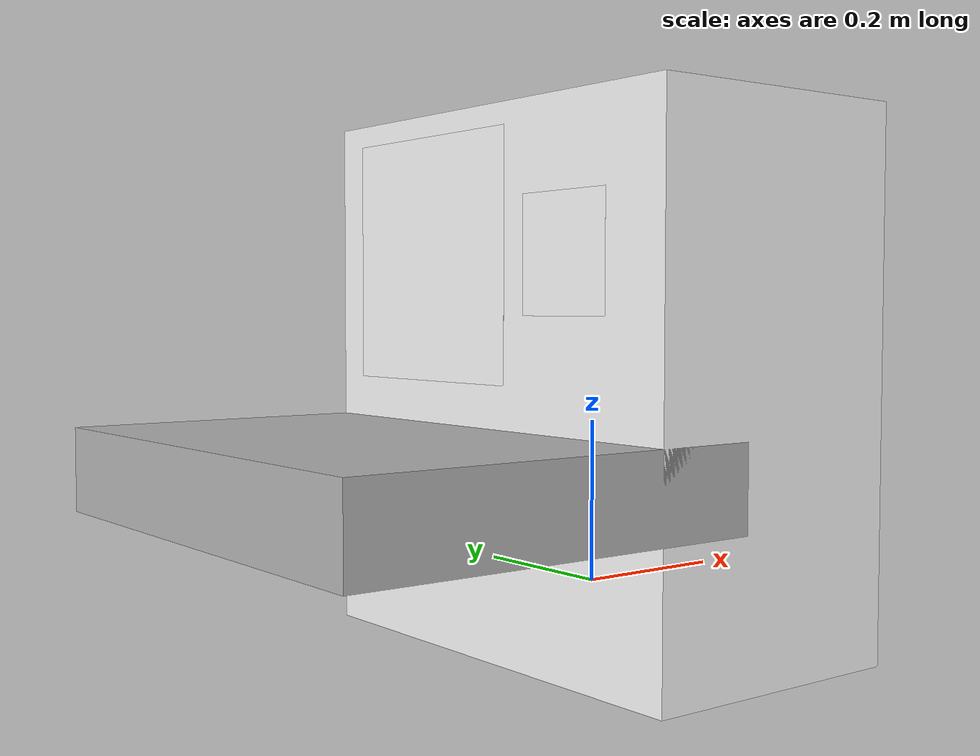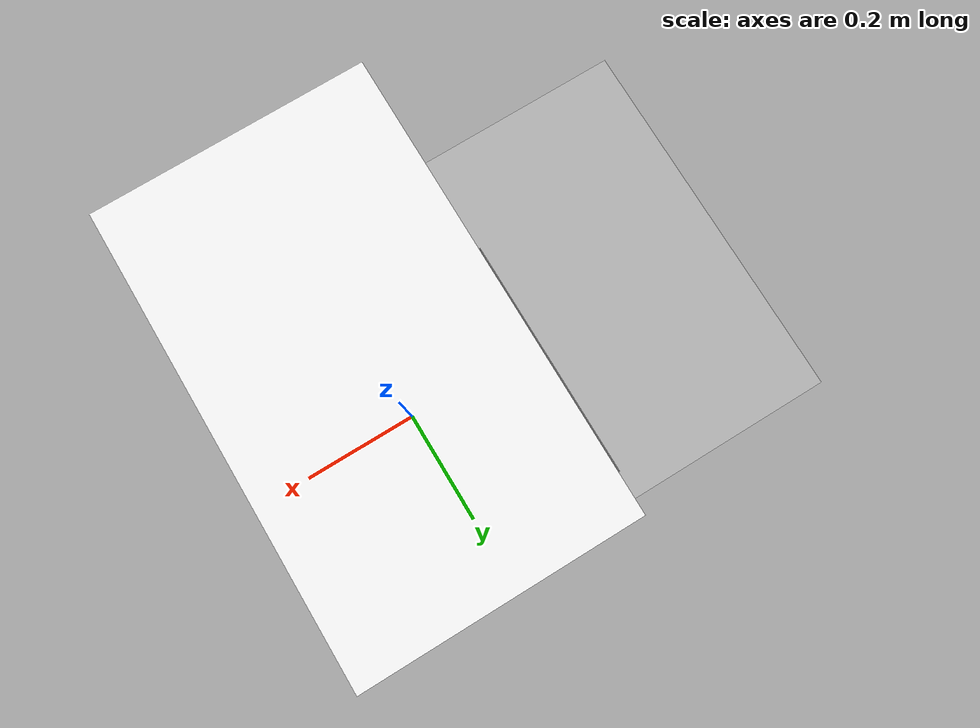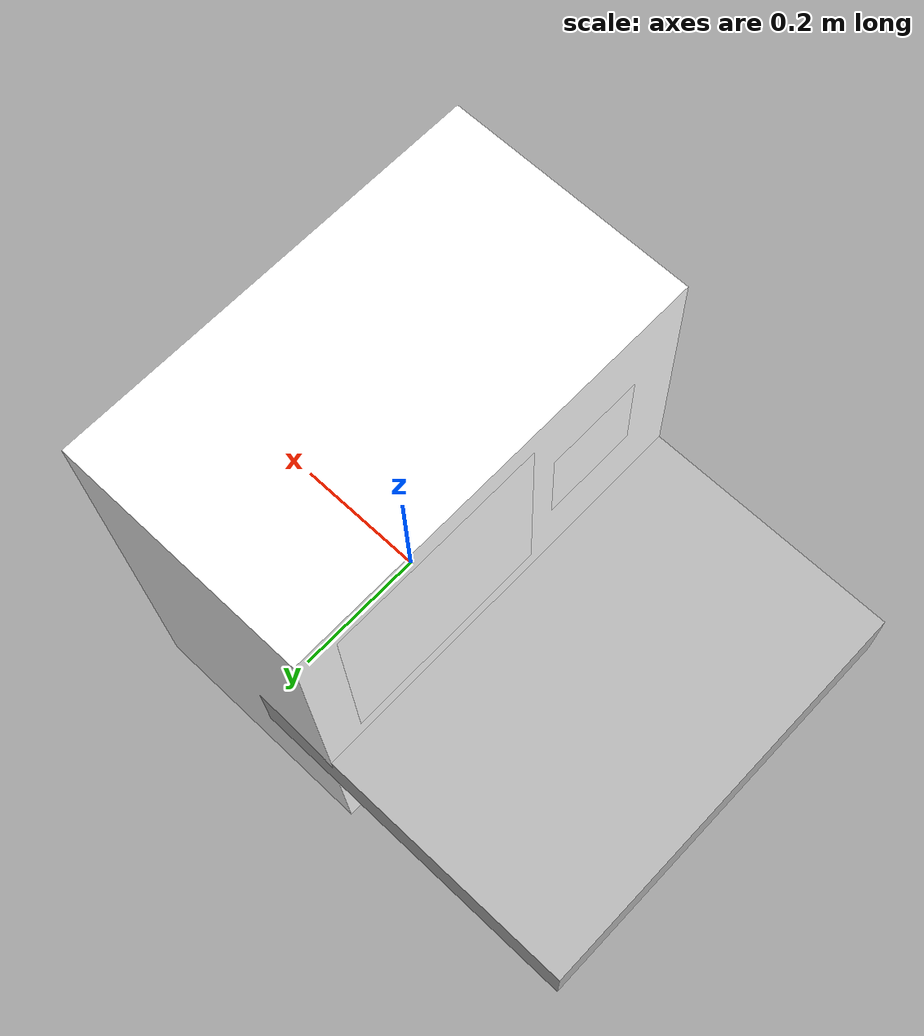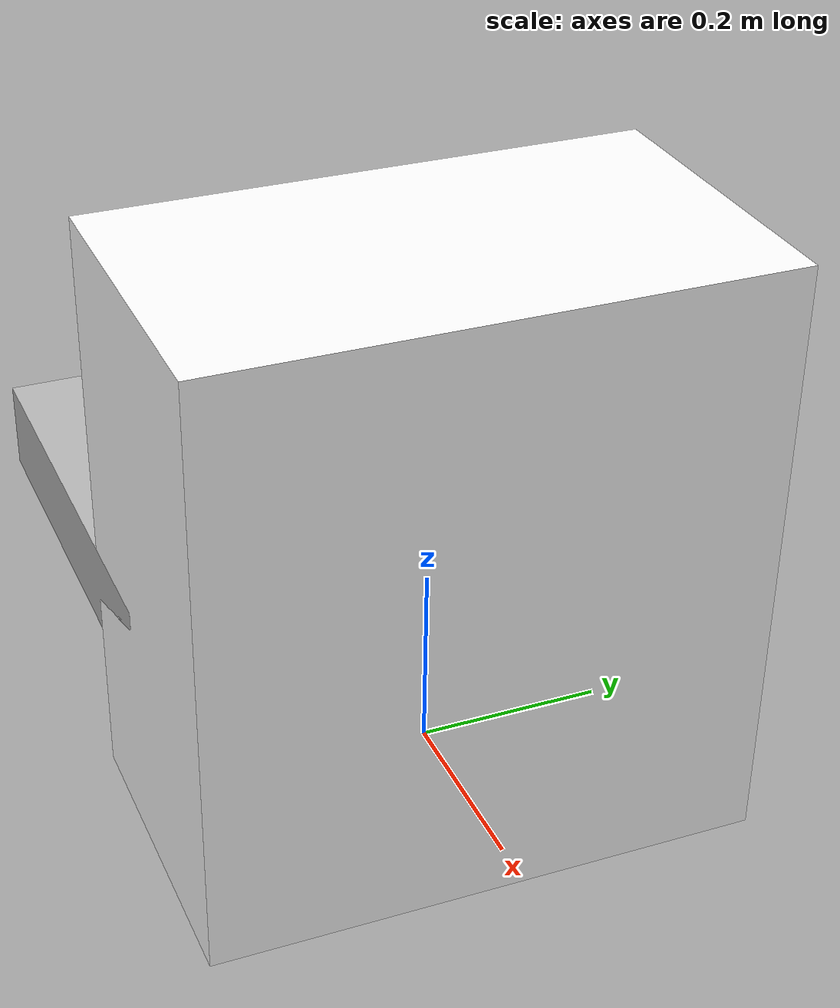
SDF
<?xml version="1.0" ?>
<sdf version="1.6">
  <model name="Charging Dock With ArUco">
    <static>true</static>
    <link name="docking_station_link">
      <pose>0.0 0.0 0.25 0 0 0</pose>
      <inertial>
        <mass>1.0</mass>
        <inertia> <!-- inertias are tricky to compute -->
          <ixx>0.083</ixx>       <!-- for a box: ixx = 0.083 * mass * (y*y + z*z) -->
          <ixy>0.0</ixy>         <!-- for a box: ixy = 0 -->
          <ixz>0.0</ixz>         <!-- for a box: ixz = 0 -->
          <iyy>0.083</iyy>       <!-- for a box: iyy = 0.083 * mass * (x*x + z*z) -->
          <iyz>0.0</iyz>         <!-- for a box: iyz = 0 -->
          <izz>0.083</izz>       <!-- for a box: izz = 0.083 * mass * (x*x + y*y) -->
        </inertia>
      </inertial>
      <collision name="docking_station_collision">
        <geometry>
          <box>
            <size>0.35 0.6 0.65</size>
          </box>
        </geometry>
      </collision>
      <visual name="docking_station_visual">
        <geometry>
          <box>
            <size>0.35 0.6 0.65</size>
          </box>
        </geometry>
        <material>
          <ambient>1.0 1.0 1.0 1</ambient>
          <diffuse>1.0 1.0 1.0 1</diffuse>
          <specular>0 0 0 0</specular>
          <emissive>0 0 0 1</emissive>
        </material>
      </visual>
      <collision name='landing'>
        <pose relative_to="docking_station_link">-0.3 0 -0.1 0 0 0</pose>
        <geometry>
          <box>
            <size>.5 .6 .1</size>
          </box>
        </geometry>
      </collision>

      <visual name='visual'>
        <pose relative_to="docking_station_link">-0.3 0 -0.1 0 0 0</pose>
        <geometry>
          <box>
            <size>.5 .6 .1</size>
          </box>
        </geometry>
      </visual>
     </link>
    <link name="aruco_marker_link">
      <pose>-0.18 0.1 0.4 0 1.5708 0</pose>
      <visual name='visual'>
        <geometry>
          <box>
            <size>0.296 0.296 1e-5</size>
          </box>
        </geometry>
        <material>
          <script>
            <uri>model://stationary_platform_with_aruco/materials/scripts</uri>
            <uri>model://stationary_platform_with_aruco/materials/textures</uri>
            <name>ArucoVisualMarker1/Marker</name>
          </script>
          <ambient>1 1 1 1</ambient>
          <diffuse>1 1 1 1</diffuse>
          <specular>0 0 0 1</specular>
          <emissive>1 1 1 0</emissive>
          <shader type='vertex'>
            <normal_map>__default__</normal_map>
          </shader>
        </material>
        <cast_shadows>1</cast_shadows>
        <transparency>0</transparency>
      </visual>
    </link>
    <link name="aruco_marker_link_2">
      <pose>-0.18 -0.15 0.4 0 1.5708 0</pose>
      <visual name='visual'>
        <geometry>
          <box>
            <size>0.1355 0.1355 1e-5</size>
          </box>
        </geometry>
        <material>
          <script>
            <uri>model://stationary_platform_with_aruco/materials/scripts</uri>
            <uri>model://stationary_platform_with_aruco/materials/textures</uri>
            <name>ArucoVisualMarker2/Marker</name>
          </script>
          <ambient>1 1 1 1</ambient>
          <diffuse>1 1 1 1</diffuse>
          <specular>0 0 0 1</specular>
          <emissive>1 1 1 0</emissive>
          <shader type='vertex'>
            <normal_map>__default__</normal_map>
          </shader>
        </material>
        <cast_shadows>1</cast_shadows>
        <transparency>0</transparency>
      </visual>
    </link>
  </model>
</sdf>
